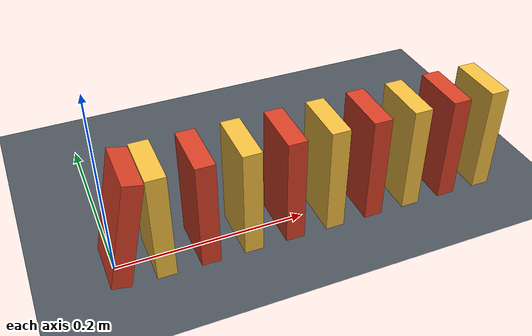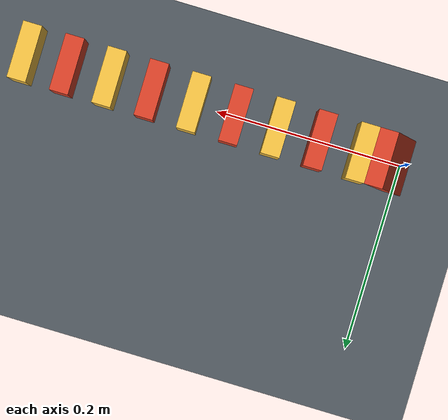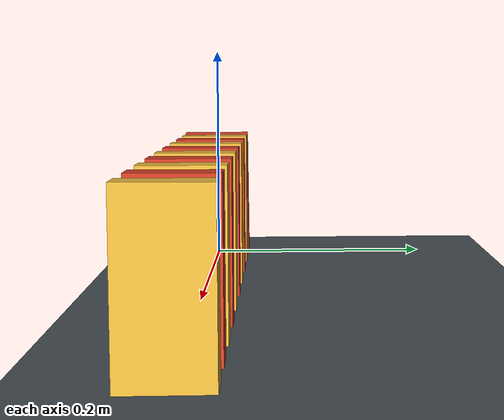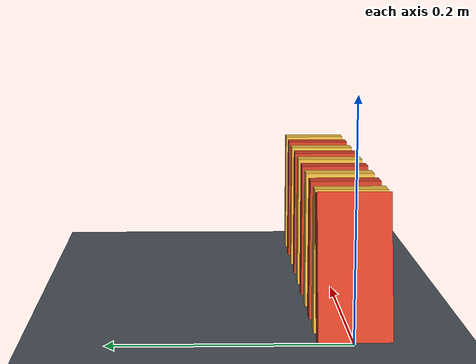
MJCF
<mujoco model="ten_domino_chain">
  <compiler angle="degree"/>
  <option timestep="0.002" gravity="0 0 -9.81" integrator="implicitfast" solver="Newton" iterations="100" tolerance="1e-10"/>
  <size nconmax="200" njmax="1000"/>

  <worldbody>
    <light name="overhead" pos="0.2 -0.3 1.5" dir="0 0 -1"/>
    <geom name="floor" type="plane" pos="0 0 0" size="1 1 0.1" friction="0.8 0.005 0.0001" condim="3" solref="0.006 1" solimp="0.95 0.99 0.001" rgba="0.3 0.33 0.36 1"/>

    <body name="domino1" pos="0.0126932254 0 0.0608679730" quat="0.9945218954 0 0.1045284633 0">
      <freejoint/>
      <geom name="domino1_box" type="box" size="0.01 0.03 0.06" density="700" friction="0.8 0.005 0.0001" condim="3" solref="0.006 1" solimp="0.95 0.99 0.001" rgba="0.85 0.25 0.15 1"/>
    </body>

    <body name="domino2" pos="0.045 0 0.0601">
      <freejoint/>
      <geom name="domino2_box" type="box" size="0.01 0.03 0.06" density="700" friction="0.8 0.005 0.0001" condim="3" solref="0.006 1" solimp="0.95 0.99 0.001" rgba="0.95 0.75 0.25 1"/>
    </body>

    <body name="domino3" pos="0.09 0 0.0601">
      <freejoint/>
      <geom name="domino3_box" type="box" size="0.01 0.03 0.06" density="700" friction="0.8 0.005 0.0001" condim="3" solref="0.006 1" solimp="0.95 0.99 0.001" rgba="0.85 0.25 0.15 1"/>
    </body>

    <body name="domino4" pos="0.135 0 0.0601">
      <freejoint/>
      <geom name="domino4_box" type="box" size="0.01 0.03 0.06" density="700" friction="0.8 0.005 0.0001" condim="3" solref="0.006 1" solimp="0.95 0.99 0.001" rgba="0.95 0.75 0.25 1"/>
    </body>

    <body name="domino5" pos="0.18 0 0.0601">
      <freejoint/>
      <geom name="domino5_box" type="box" size="0.01 0.03 0.06" density="700" friction="0.8 0.005 0.0001" condim="3" solref="0.006 1" solimp="0.95 0.99 0.001" rgba="0.85 0.25 0.15 1"/>
    </body>

    <body name="domino6" pos="0.225 0 0.0601">
      <freejoint/>
      <geom name="domino6_box" type="box" size="0.01 0.03 0.06" density="700" friction="0.8 0.005 0.0001" condim="3" solref="0.006 1" solimp="0.95 0.99 0.001" rgba="0.95 0.75 0.25 1"/>
    </body>

    <body name="domino7" pos="0.27 0 0.0601">
      <freejoint/>
      <geom name="domino7_box" type="box" size="0.01 0.03 0.06" density="700" friction="0.8 0.005 0.0001" condim="3" solref="0.006 1" solimp="0.95 0.99 0.001" rgba="0.85 0.25 0.15 1"/>
    </body>

    <body name="domino8" pos="0.315 0 0.0601">
      <freejoint/>
      <geom name="domino8_box" type="box" size="0.01 0.03 0.06" density="700" friction="0.8 0.005 0.0001" condim="3" solref="0.006 1" solimp="0.95 0.99 0.001" rgba="0.95 0.75 0.25 1"/>
    </body>

    <body name="domino9" pos="0.36 0 0.0601">
      <freejoint/>
      <geom name="domino9_box" type="box" size="0.01 0.03 0.06" density="700" friction="0.8 0.005 0.0001" condim="3" solref="0.006 1" solimp="0.95 0.99 0.001" rgba="0.85 0.25 0.15 1"/>
    </body>

    <body name="domino10" pos="0.405 0 0.0601">
      <freejoint/>
      <geom name="domino10_box" type="box" size="0.01 0.03 0.06" density="700" friction="0.8 0.005 0.0001" condim="3" solref="0.006 1" solimp="0.95 0.99 0.001" rgba="0.95 0.75 0.25 1"/>
    </body>
  </worldbody>

  <keyframe>
    <key name="start" time="0" qvel="0.243071892 0 -0.010772902 0 4 0  0 0 0 0 0 0  0 0 0 0 0 0  0 0 0 0 0 0  0 0 0 0 0 0  0 0 0 0 0 0  0 0 0 0 0 0  0 0 0 0 0 0  0 0 0 0 0 0  0 0 0 0 0 0"/>
  </keyframe>
</mujoco>
